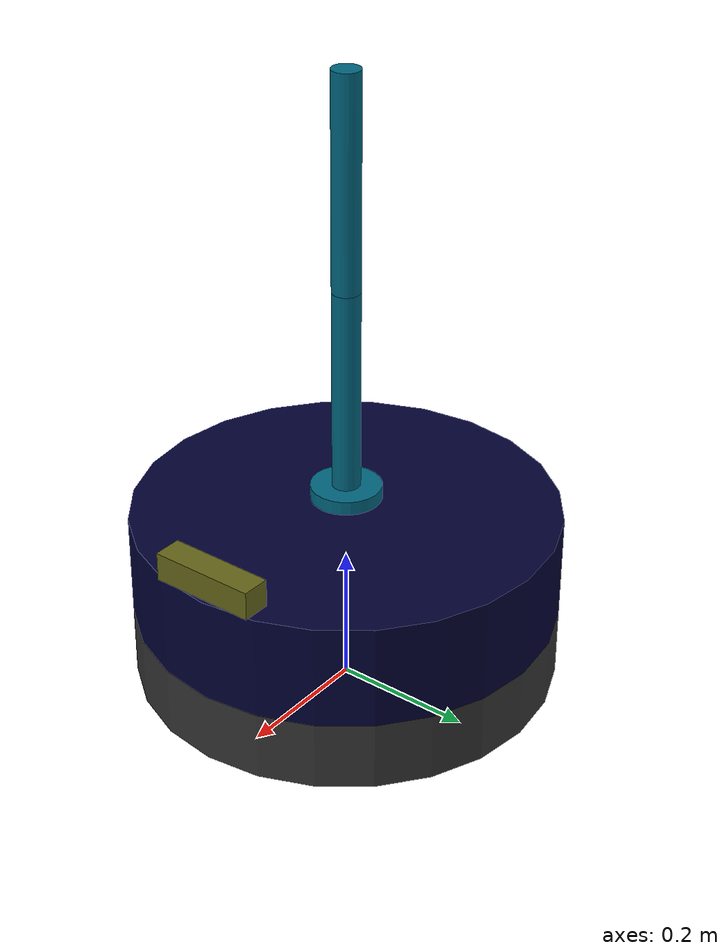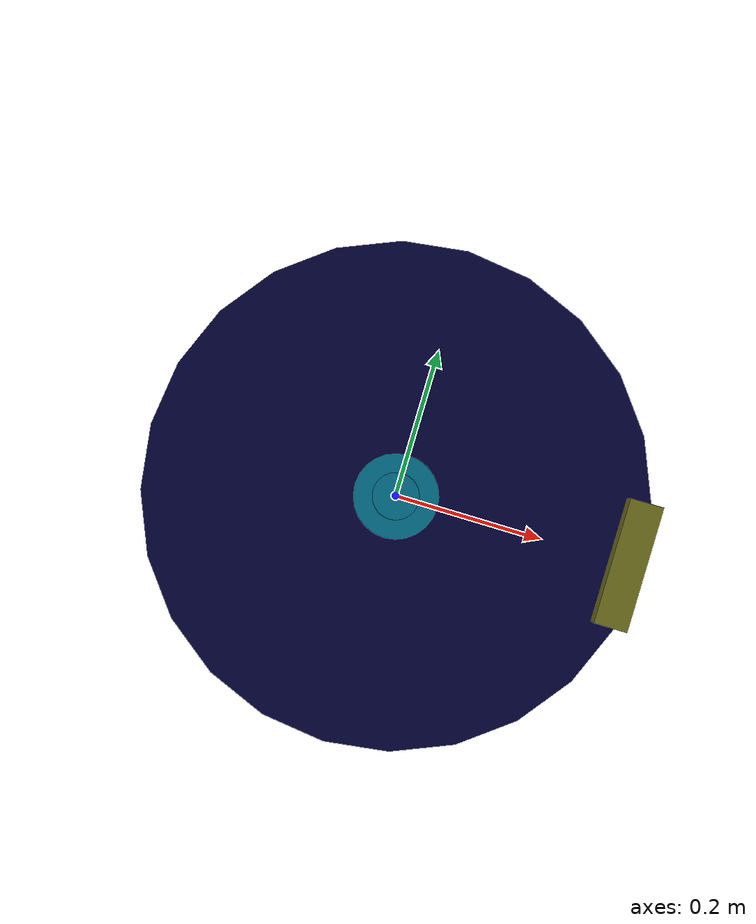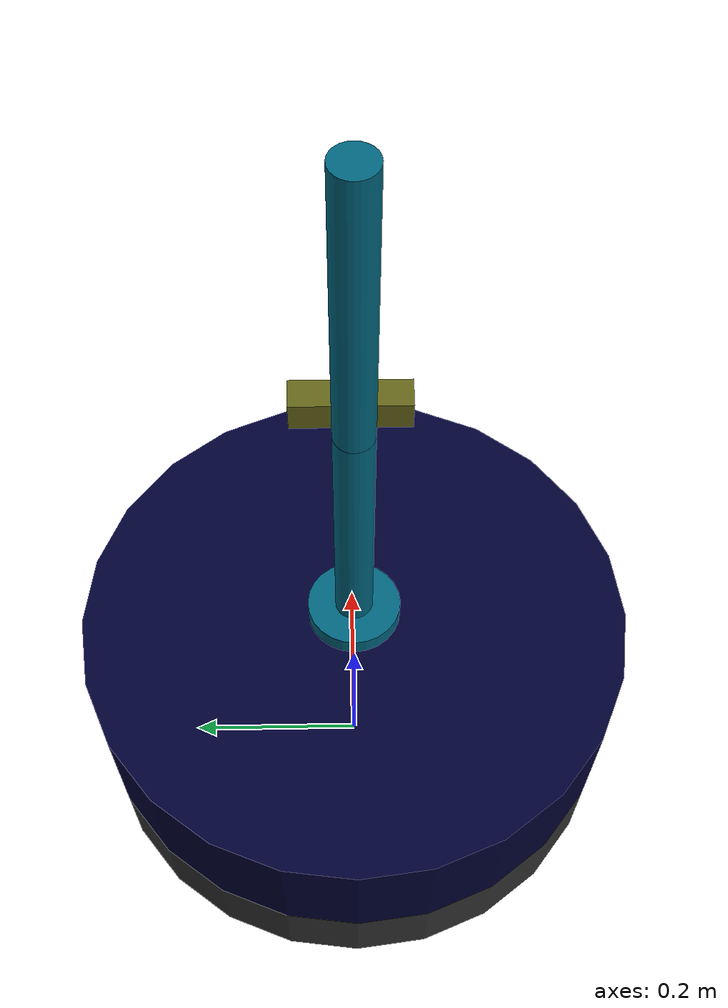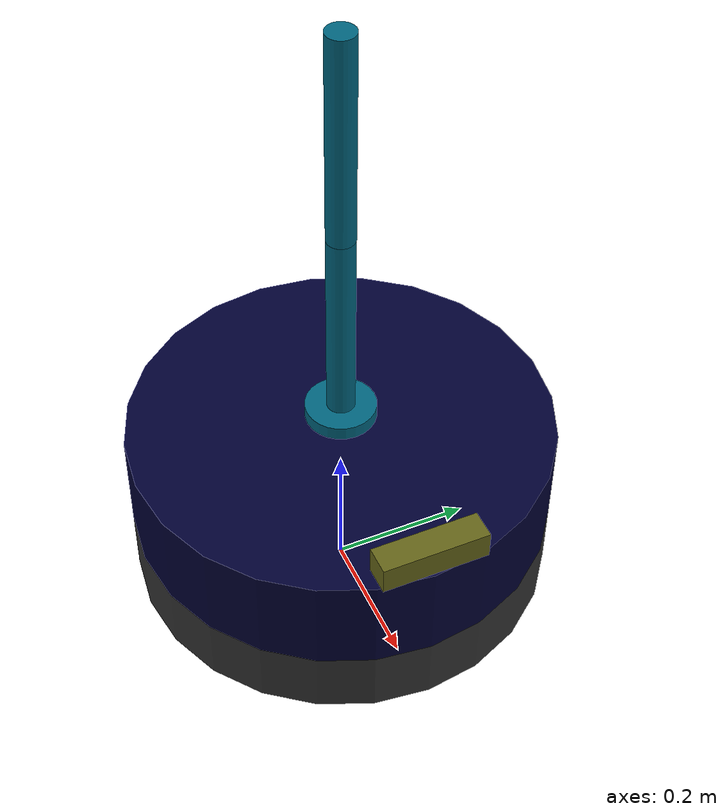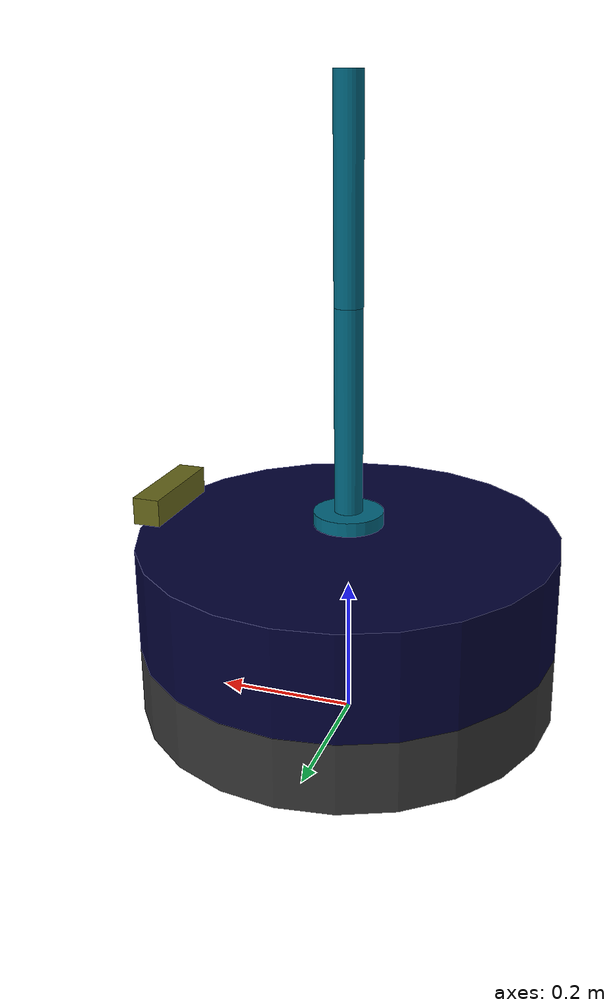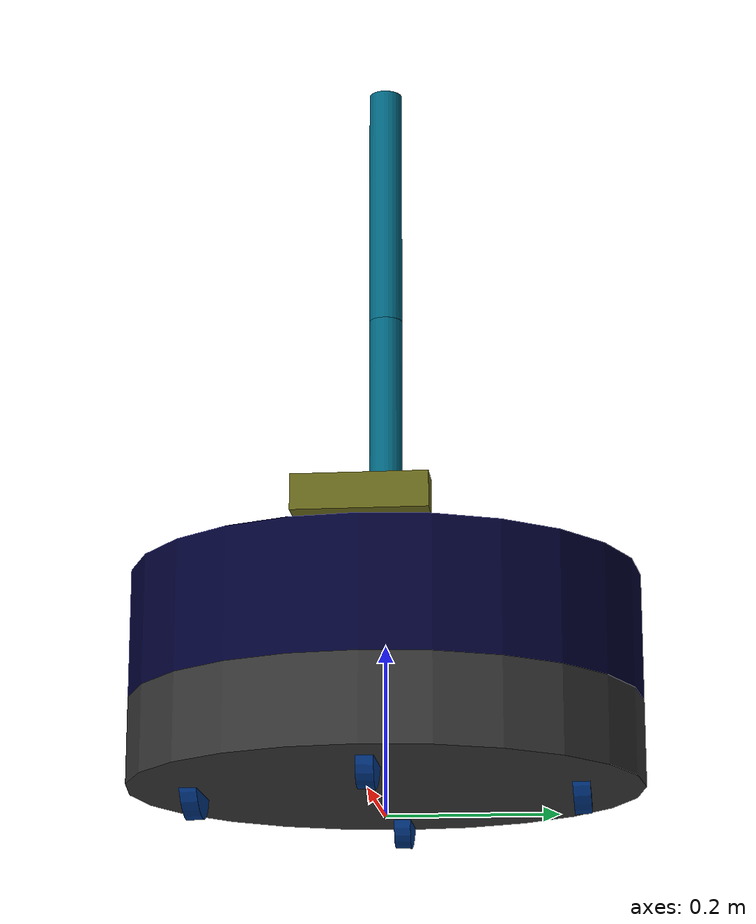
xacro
<?xml version="1.0"?>
<robot xmlns:xacro="http://ros.org/wiki/xacro" name="test_robot">
  <xacro:arg name="use_fake_hardware" default="false"/>
  <link name="base_link">
    <origin xyz="0 0 0" rpy="0 0 0"/>
    <inertial>
      <origin xyz="0 0 0" rpy="0 0 0"/>
      <mass value="0"/>
      <inertia ixx="0.005" ixy="0" ixz="0" iyy="0.005" iyz="0" izz="0.01"/>
    </inertial>
  </link>
  <link name="lower_body_link">
    <origin xyz="0 0 0" rpy="0 0 0"/>
    <visual>
      <geometry>
        <cylinder radius="0.3" length="0.1"/>
      </geometry>
      <material name="lower_body_material">
        <color rgba="0.2 0.2 0.2 1"/>
      </material>
    </visual>
    <collision>
      <geometry>
        <cylinder radius="0.3" length="0.1"/>
      </geometry>
    </collision>
    <inertial>
      <origin xyz="0 0 0" rpy="0 0 0"/>
      <mass value="0.8"/>
      <inertia ixx="0.005" ixy="0" ixz="0" iyy="0.005" iyz="0" izz="0.01"/>
    </inertial>
  </link>
  <link name="upper_body_link">
    <origin xyz="0 0 0" rpy="0 0 0"/>
    <visual>
      <geometry>
        <cylinder radius="0.3" length="0.15"/>
      </geometry>
      <material name="upper_body_material">
        <color rgba="0 0 0.2 1"/>
      </material>
    </visual>
    <collision>
      <geometry>
        <cylinder radius="0.3" length="0.15"/>
      </geometry>
    </collision>
    <inertial>
      <origin xyz="0 0 0" rpy="0 0 0"/>
      <mass value="0.5"/>
      <inertia ixx="0.005" ixy="0" ixz="0" iyy="0.005" iyz="0" izz="0.01"/>
    </inertial>
  </link>
  <joint name="base_to_lower_body_joint" type="fixed">
    <parent link="base_link"/>
    <child link="lower_body_link"/>
    <origin xyz="0 0 0.08" rpy="0 0 0"/>
  </joint>
  <joint name="lower_to_upper_joint" type="revolute">
    <parent link="lower_body_link"/>
    <child link="upper_body_link"/>
    <axis xyz="0 0 1"/>
    <origin xyz="0 0 0.125" rpy="0 0 0"/>
    <limit effort="0.3" velocity="0.5" lower="-1.52" upper="1.52"/>
    <dynamics damping="0.01" friction="0.001"/>
  </joint>
  <xacro:include filename="$(find ros_ign_utils)/models/urdf/wheel_link.xacro"/>
  <xacro:wheel_link prefix="left">
    <parent link="lower_body_link"/>
    <origin xyz="0 0.225 -0.03" rpy="-1.52 0 0"/>
  </xacro:wheel_link>
  <xacro:wheel_link prefix="right">
    <parent link="lower_body_link"/>
    <origin xyz="0 -0.225 -0.03" rpy="-1.52 0 0"/>
  </xacro:wheel_link>
  <xacro:include filename="$(find ros_ign_utils)/models/urdf/swivel_caster_link.xacro"/>
  <xacro:swivel_caster_link prefix="rear">
    <parent link="lower_body_link"/>
    <origin xyz="-0.225 0 0" rpy="0 0 0"/>
  </xacro:swivel_caster_link>
  <xacro:swivel_caster_link prefix="front">
    <parent link="lower_body_link"/>
    <origin xyz="0.225 0 0" rpy="0 0 0"/>
  </xacro:swivel_caster_link>
  <xacro:include filename="$(find ros_ign_utils)/models/urdf/arm_link.xacro"/>
  <xacro:arm_link prefix="center">
    <parent link="upper_body_link"/>
    <origin xyz="0 0 0.1" rpy="0 0 0"/>
  </xacro:arm_link>
  <xacro:include filename="$(find ros_ign_utils)/models/urdf/camera_link_macro.xacro"/>
  <xacro:camera_link_macro prefix="front">
    <parent link="upper_body_link"/>
    <origin xyz="0.28 0 0.1" rpy="0 0 0"/>
  </xacro:camera_link_macro>
  <xacro:include filename="$(find ros_ign_utils)/models/urdf/imu_link_macro.xacro"/>
  <xacro:imu_link_macro prefix="upper">
    <parent link="upper_body_link"/>
    <origin xyz="0.05 0 0" rpy="0 0 0"/>
  </xacro:imu_link_macro>
  <xacro:imu_link_macro prefix="lower">
    <parent link="lower_body_link"/>
    <origin xyz="-0.05 0 0" rpy="0 0 0"/>
  </xacro:imu_link_macro>
  <gazebo>
    <plugin filename="ignition-gazebo-joint-state-publisher-system" name="ignition::gazebo::systems::JointStatePublisher">
    </plugin>
    <plugin filename="ign_ros2_control-system" name="ign_ros2_control::IgnitionROS2ControlPlugin">
      <parameters>$(find ros_ign_utils)/config/test_robot_controllers.yaml</parameters>
      <ros>
        <remapping>joint_states:=joint_state_broadcaster/joint_states</remapping>
      </ros>
    </plugin>
  </gazebo>
  <ros2_control name="IgnitionSystem" type="system">
    <hardware>
      <xacro:if value="$(arg use_fake_hardware)">
        <plugin>fake_components/GenericSystem</plugin>
      </xacro:if>
      <xacro:unless value="$(arg use_fake_hardware)">
        <plugin>ign_ros2_control/IgnitionSystem</plugin>
      </xacro:unless>
    </hardware>
    <joint name="left_wheel_joint">
      <command_interface name="velocity">
        <param name="min">-1</param>
        <param name="max">1</param>
      </command_interface>
      <state_interface name="position"/>
      <state_interface name="velocity"/>
    </joint>
    <joint name="right_wheel_joint">
      <command_interface name="velocity">
        <param name="min">-1</param>
        <param name="max">1</param>
      </command_interface>
      <state_interface name="position"/>
      <state_interface name="velocity"/>
    </joint>
    <joint name="lower_to_upper_joint">
      <command_interface name="position">
        <param name="min">-1.57</param>
        <param name="max">1.57</param>
      </command_interface>
      <state_interface name="position"/>
      <state_interface name="velocity"/>
    </joint>
    <joint name="center_lower_arm_joint">
      <command_interface name="position">
        <param name="min">-1.57</param>
        <param name="max">1.57</param>
      </command_interface>
      <state_interface name="position"/>
      <state_interface name="velocity"/>
      <state_interface name="effort"/>
    </joint>
    <joint name="center_upper_arm_joint">
      <command_interface name="position">
        <param name="min">-1.57</param>
        <param name="max">1.57</param>
      </command_interface>
      <state_interface name="position"/>
      <state_interface name="velocity"/>
      <state_interface name="effort"/>
    </joint>
  </ros2_control>
</robot>

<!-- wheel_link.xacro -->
<robot xmlns:xacro="http://ros.org/wiki/xacro">
  <xacro:macro name="wheel_link" params="*parent *origin prefix">
    <link name="${prefix}_wheel_link">
      <origin xyz="0 0 0" rpy="0 0 0"/>
      <visual>
        <geometry>
          <cylinder radius="0.05" length="0.02"/>
        </geometry>
        <material name="${prefix}_wheel_material">
          <color rgba="0 0.2 0.5 1"/>
        </material>
      </visual>
      <collision>
        <geometry>
          <cylinder radius="0.05" length="0.02"/>
        </geometry>
      </collision>
      <inertial>
        <origin xyz="0 0 0" rpy="0 0 0"/>
        <mass value="0.1"/>
        <inertia ixx="0.0025" ixy="0" ixz="0" iyy="0.0025" iyz="0" izz="0.005"/>
      </inertial>
    </link>
    <joint name="${prefix}_wheel_joint" type="continuous">
      <xacro:insert_block name="parent"/>
      <child link="${prefix}_wheel_link"/>
      <axis xyz="0 0 1"/>
      <xacro:insert_block name="origin"/>
      <limit effort="0.5" velocity="1.0"/>
      <dynamics damping="0.01" friction="0.001"/>
    </joint>
  </xacro:macro>
</robot>

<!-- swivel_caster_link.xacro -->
<robot xmlns:xacro="http://ros.org/wiki/xacro">
  <xacro:macro name="swivel_caster_link" params="*parent *origin prefix">
    <link name="${prefix}_swivel_link">
      <origin xyz="0 0 0" rpy="0 0 0"/>
      <visual>
        <geometry>
          <cylinder radius="0.04" length="0.008"/>
        </geometry>
        <material name="${prefix}_swivel_material">
          <color rgba="0 0.2 0.5 1"/>
        </material>
      </visual>
      <collision>
        <geometry>
          <cylinder radius="0.04" length="0.008"/>
        </geometry>
      </collision>
      <inertial>
        <origin xyz="0 0 0" rpy="0 0 0"/>
        <mass value="0.05"/>
        <inertia ixx="0.0025" ixy="0" ixz="0" iyy="0.0025" iyz="0" izz="0.005"/>
      </inertial>
    </link>
    <link name="${prefix}_caster_link">
      <origin xyz="0 0 0" rpy="0 0 0"/>
      <visual>
        <geometry>
          <cylinder radius="0.04" length="0.02"/>
        </geometry>
        <material name="${prefix}_wheel_material">
          <color rgba="0 0.2 0.5 1"/>
        </material>
      </visual>
      <collision>
        <geometry>
          <cylinder radius="0.04" length="0.02"/>
        </geometry>
      </collision>
      <inertial>
        <origin xyz="0 0 0" rpy="0 0 0"/>
        <mass value="0.1"/>
        <inertia ixx="0.0025" ixy="0" ixz="0" iyy="0.0025" iyz="0" izz="0.005"/>
      </inertial>
    </link>
    <joint name="${prefix}_swivel_joint" type="continuous">
      <xacro:insert_block name="parent"/>
      <child link="${prefix}_swivel_link"/>
      <axis xyz="0 0 1"/>
      <xacro:insert_block name="origin"/>
      <origin xyz="-0.2 0 0" rpy="0 0 0"/>
      <limit effort="0" velocity="0"/>
      <dynamics damping="0.001" friction="0.0001"/>
    </joint>
    <joint name="${prefix}_caster_joint" type="continuous">
      <parent link="${prefix}_swivel_link"/>
      <child link="${prefix}_caster_link"/>
      <axis xyz="0 0 1"/>
      <origin xyz="-0.03 0 -0.04" rpy="1.52 0 0"/>
      <limit effort="0" velocity="0"/>
      <dynamics damping="0.001" friction="0.0001"/>
    </joint>
  </xacro:macro>
</robot>

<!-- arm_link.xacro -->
<robot xmlns:xacro="http://ros.org/wiki/xacro">
  <xacro:macro name="arm_link" params="*parent *origin prefix">
    <link name="${prefix}_arm_link">
      <origin xyz="0 0 0" rpy="0 0 0"/>
      <visual>
        <geometry>
          <cylinder radius="0.05" length="0.02"/>
        </geometry>
        <material name="${prefix}_arm_material">
          <color rgba="0 0.4 0.5 1"/>
        </material>
      </visual>
      <collision>
        <geometry>
          <cylinder radius="0.05" length="0.02"/>
        </geometry>
      </collision>
      <inertial>
        <origin xyz="0 0 0" rpy="0 0 0"/>
        <mass value="0.1"/>
        <inertia ixx="0.0025" ixy="0" ixz="0" iyy="0.0025" iyz="0" izz="0.0025"/>
      </inertial>
    </link>
    <link name="${prefix}_lower_arm_link">
      <origin xyz="0 0 0" rpy="0 0 0"/>
      <visual>
        <origin xyz="0 0 0.15" rpy="0 0 0"/>
        <geometry>
          <cylinder radius="0.02" length="0.3"/>
        </geometry>
        <material name="${prefix}_arm_material"/>
      </visual>
      <collision>
        <origin xyz="0 0 0.15" rpy="0 0 0"/>
        <geometry>
          <cylinder radius="0.02" length="0.3"/>
        </geometry>
      </collision>
      <inertial>
        <origin xyz="0 0 0" rpy="0 0 0"/>
        <mass value="0.1"/>
        <inertia ixx="0.0025" ixy="0" ixz="0" iyy="0.0025" iyz="0" izz="0.0025"/>
      </inertial>
    </link>
    <link name="${prefix}_upper_arm_link">
      <origin xyz="0 0 0" rpy="0 0 0"/>
      <visual>
        <origin xyz="0 0 0.15" rpy="0 0 0"/>
        <geometry>
          <cylinder radius="0.02" length="0.3"/>
        </geometry>
        <material name="${prefix}_arm_material"/>
      </visual>
      <collision>
        <origin xyz="0 0 0.15" rpy="0 0 0"/>
        <geometry>
          <cylinder radius="0.02" length="0.3"/>
        </geometry>
      </collision>
      <inertial>
        <origin xyz="0 0 0" rpy="0 0 0"/>
        <mass value="0.1"/>
        <inertia ixx="0.0025" ixy="0" ixz="0" iyy="0.0025" iyz="0" izz="0.0025"/>
      </inertial>
    </link>
    <gazebo reference="${prefix}_arm_link">
      <self_collide>true</self_collide>
    </gazebo>
    <gazebo reference="${prefix}_lower_arm_link">
      <self_collide>true</self_collide>
    </gazebo>
    <gazebo reference="${prefix}_upper_arm_link">
      <self_collide>true</self_collide>
    </gazebo>
    <joint name="${prefix}_arm_joint" type="fixed">
      <xacro:insert_block name="parent"/>
      <child link="${prefix}_arm_link"/>
      <axis xyz="0 0 1"/>
      <xacro:insert_block name="origin"/>
    </joint>
    <joint name="${prefix}_lower_arm_joint" type="continuous">
      <parent link="${prefix}_arm_link"/>
      <child link="${prefix}_lower_arm_link"/>
      <axis xyz="0 1 0"/>
      <origin xyz="0 0 0" rpy="0 0 0"/>
      <limit effort="1.0" velocity="1.0"/>
      <dynamics damping="0.01" friction="0.001" lower="-1.57" upper="1.57"/>
    </joint>
    <joint name="${prefix}_upper_arm_joint" type="continuous">
      <parent link="${prefix}_lower_arm_link"/>
      <child link="${prefix}_upper_arm_link"/>
      <axis xyz="0 1 0"/>
      <origin xyz="0 0 0.3" rpy="0 0 0"/>
      <limit effort="1.0" velocity="1.0"/>
      <dynamics damping="0.01" friction="0.001" lower="-1.57" upper="1.57"/>
    </joint>
  </xacro:macro>
</robot>

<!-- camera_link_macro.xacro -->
<robot xmlns:xacro="http://ros.org/wiki/xacro">
  <xacro:macro name="camera_link_macro" params="*parent *origin prefix">
    <link name="${prefix}_camera_link">
      <origin xyz="0 0 0" rpy="0 0 0"/>
      <visual>
        <geometry>
          <box size="0.04 0.15 0.04"/>
        </geometry>
        <material name="${prefix}_camera_material">
          <color rgba="0.4 0.4 0.1 1"/>
        </material>
      </visual>
      <collision>
        <geometry>
          <box size="0.04 0.15 0.04"/>
        </geometry>
      </collision>
      <inertial>
        <origin xyz="0 0 0" rpy="0 0 0"/>
        <mass value="0.1"/>
        <inertia ixx="0.001" ixy="0" ixz="0" iyy="0.001" iyz="0" izz="0.001"/>
      </inertial>
    </link>
    <joint name="${prefix}_camera_joint" type="fixed">
      <xacro:insert_block name="parent"/>
      <child link="${prefix}_camera_link"/>
      <xacro:insert_block name="origin"/>
    </joint>
    <gazebo reference="${prefix}_camera_link">
      <sensor name="${prefix}_camera" type="rgbd_camera">
        <update_rate>10</update_rate>
        <enable_metrics>true</enable_metrics>
        <camera>
          <horizontal_fov>1.9</horizontal_fov>
          <image>
            <width>1280</width>
            <height>720</height>
          </image>
          <depth_camera>
            <clip>
              <near>0.4</near>
              <far>5</far>
            </clip>
          </depth_camera>
          <distorition>
            <k1>0</k1>
            <k2>0</k2>
            <k3>0</k3>
            <p1>0</p1>
            <p2>0</p2>
          </distorition>
          <lens>
            <type>stereographic</type>
            <scale_to_hfov>true</scale_to_hfov>
          </lens>
          <noise>
            <type>gaussian</type>
            <mean>0.0</mean>
            <stddev>0.025</stddev>
          </noise>
        </camera>
      </sensor>
    </gazebo>
  </xacro:macro>
  <gazebo>
    <plugin filename="libignition-gazebo-sensors-system" name="ignition::gazebo::systems::Sensors"/>
  </gazebo>
</robot>

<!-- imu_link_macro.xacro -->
<robot xmlns:xacro="http://ros.org/wiki/xacro">
  <xacro:macro name="imu_link_macro" params="*parent *origin prefix">
    <link name="${prefix}_imu_link">
      <origin xyz="0 0 0" rpy="0 0 0"/>
      <inertial>
        <origin xyz="0 0 0" rpy="0 0 0"/>
        <mass value="0.01"/>
        <inertia ixx="0.0025" ixy="0" ixz="0" iyy="0.0025" iyz="0" izz="0.005"/>
      </inertial>
    </link>
    <joint name="${prefix}_imu_joint" type="fixed">
      <xacro:insert_block name="parent"/>
      <child link="${prefix}_imu_link"/>
      <axis xyz="0 0 1"/>
      <xacro:insert_block name="origin"/>
    </joint>
    <gazebo reference="${prefix}_imu_link">
      <sensor name="${prefix}_imu" type="imu">
        <update_rate>50</update_rate>
        <imu>
          <angular_velocity>
            <x>
              <noise type="gaussian">
                <mean>0</mean>
                <stddev>0.125</stddev>
              </noise>
            </x>
            <y>
              <noise type="gaussian">
                <mean>0</mean>
                <stddev>0.125</stddev>
              </noise>
            </y>
            <z>
              <noise type="gaussian">
                <mean>0</mean>
                <stddev>0.125</stddev>
              </noise>
            </z>
          </angular_velocity>
          <linear_acceleration>
            <x>
              <noise type="gaussian">
                <mean>0</mean>
                <stddev>0.125</stddev>
              </noise>
            </x>
            <y>
              <noise type="gaussian">
                <mean>0</mean>
                <stddev>0.125</stddev>
              </noise>
            </y>
            <z>
              <noise type="gaussian">
                <mean>0.001</mean>
                <stddev>0.125</stddev>
              </noise>
            </z>
          </linear_acceleration>
        </imu>
      </sensor>
    </gazebo>
  </xacro:macro>
  <gazebo>
    <plugin filename="libignition-gazebo-imu-system" name="ignition::gazebo::systems::Imu"/>
    <plugin filename="ignition-gazebo-magnetometer-system" name="ignition::gazebo::systems::Magnetometer"/>
  </gazebo>
</robot>
